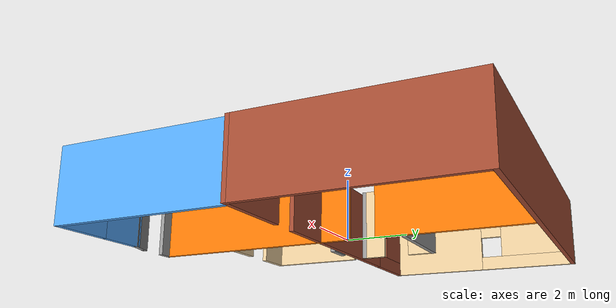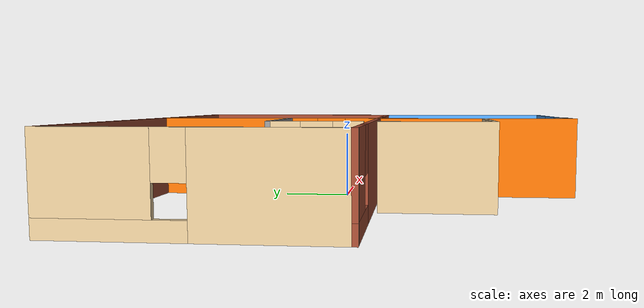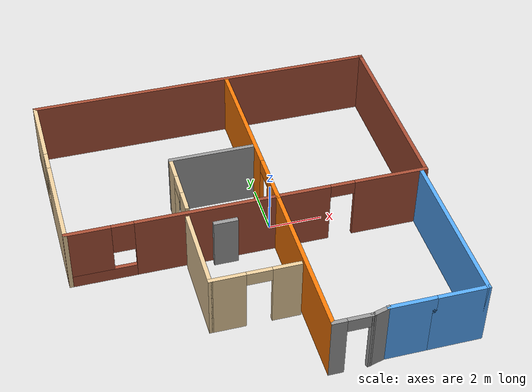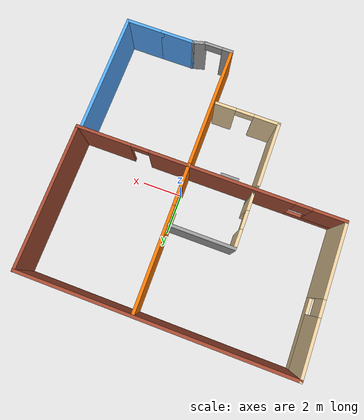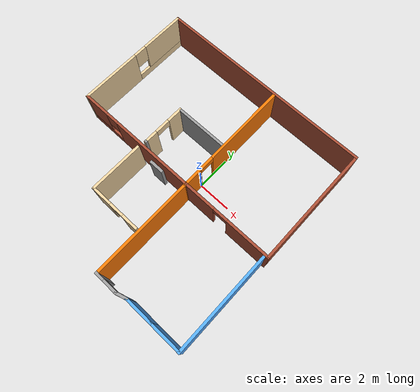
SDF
<?xml version='1.0'?>
<sdf version='1.6'>
  <model name='Home'>
    <pose frame=''>-1.01079 -0.552787 0 0 -0 0</pose>
    <link name='Door_3'>
      <collision name='Door_3_Collision'>
        <geometry>
          <box>
            <size>0.9 0.17 2</size>
          </box>
        </geometry>
        <pose frame=''>0 0 1 0 -0 0</pose>
      </collision>
      <visual name='Door_3_Visual'>
        <pose frame=''>0 0 1 0 -0 0</pose>
        <geometry>
          <box>
            <size>0.9 0.17 2</size>
          </box>
        </geometry>
        <material>
          <script>
            <uri>file://media/materials/scripts/gazebo.material</uri>
            <name>Gazebo/Grey</name>
          </script>
        </material>
      </visual>
      <pose frame=''>-0.975524 -0.723427 0 0 -0 0</pose>
    </link>
    <link name='Wall_15'>
      <collision name='Wall_15_Collision'>
        <geometry>
          <box>
            <size>13.25 0.15 2.5</size>
          </box>
        </geometry>
        <pose frame=''>0 0 1.25 0 -0 0</pose>
      </collision>
      <visual name='Wall_15_Visual'>
        <pose frame=''>0 0 1.25 0 -0 0</pose>
        <geometry>
          <box>
            <size>13.25 0.15 2.5</size>
          </box>
        </geometry>
        <material>
          <script>
            <uri>file://media/materials/scripts/gazebo.material</uri>
            <name>Gazebo/Bricks</name>
          </script>
          <ambient>1 0.764706 0.305882 1</ambient>
        </material>
        <meta>
          <layer>0</layer>
        </meta>
      </visual>
      <pose frame=''>0 6.63211 0 0 -0 0</pose>
    </link>
    <link name='Wall_16'>
      <collision name='Wall_16_Collision'>
        <geometry>
          <box>
            <size>7.25 0.15 2.5</size>
          </box>
        </geometry>
        <pose frame=''>0 0 1.25 0 -0 0</pose>
      </collision>
      <visual name='Wall_16_Visual'>
        <pose frame=''>0 0 1.25 0 -0 0</pose>
        <geometry>
          <box>
            <size>7.25 0.15 2.5</size>
          </box>
        </geometry>
        <material>
          <script>
            <uri>file://media/materials/scripts/gazebo.material</uri>
            <name>Gazebo/Bricks</name>
          </script>
          <ambient>1 0.764706 0.305882 1</ambient>
        </material>
        <meta>
          <layer>0</layer>
        </meta>
      </visual>
      <pose frame=''>6.55 3.08211 0 0 0 -1.5708</pose>
    </link>
    <link name='Wall_17'>
      <pose frame=''>0 -0.467893 0 0 -0 3.14159</pose>
      <visual name='Wall_17_Visual_0'>
        <pose frame=''>-5.23558 0 1.25 0 -0 0</pose>
        <geometry>
          <box>
            <size>2.77884 0.15 2.5</size>
          </box>
        </geometry>
        <material>
          <script>
            <uri>file://media/materials/scripts/gazebo.material</uri>
            <name>Gazebo/Bricks</name>
          </script>
          <ambient>0.921569 0.807843 0.615686 1</ambient>
        </material>
        <meta>
          <layer>0</layer>
        </meta>
      </visual>
      <collision name='Wall_17_Collision_0'>
        <geometry>
          <box>
            <size>2.77884 0.15 2.5</size>
          </box>
        </geometry>
        <pose frame=''>-5.23558 0 1.25 0 -0 0</pose>
      </collision>
      <visual name='Wall_17_Visual_1'>
        <pose frame=''>0.607303 0 1.25 0 -0 0</pose>
        <geometry>
          <box>
            <size>7.10693 0.15 2.5</size>
          </box>
        </geometry>
        <material>
          <script>
            <uri>file://media/materials/scripts/gazebo.material</uri>
            <name>Gazebo/Bricks</name>
          </script>
          <ambient>0.921569 0.807843 0.615686 1</ambient>
        </material>
        <meta>
          <layer>0</layer>
        </meta>
      </visual>
      <collision name='Wall_17_Collision_1'>
        <geometry>
          <box>
            <size>7.10693 0.15 2.5</size>
          </box>
        </geometry>
        <pose frame=''>0.607303 0 1.25 0 -0 0</pose>
      </collision>
      <visual name='Wall_17_Visual_2'>
        <pose frame=''>5.39288 0 0.25 0 -0 0</pose>
        <geometry>
          <box>
            <size>2.46423 0.15 0.5</size>
          </box>
        </geometry>
        <material>
          <script>
            <uri>file://media/materials/scripts/gazebo.material</uri>
            <name>Gazebo/Bricks</name>
          </script>
          <ambient>0.921569 0.807843 0.615686 1</ambient>
        </material>
        <meta>
          <layer>0</layer>
        </meta>
      </visual>
      <collision name='Wall_17_Collision_2'>
        <geometry>
          <box>
            <size>2.46423 0.15 0.5</size>
          </box>
        </geometry>
        <pose frame=''>5.39288 0 0.25 0 -0 0</pose>
      </collision>
      <visual name='Wall_17_Visual_3'>
        <pose frame=''>5.79288 0 1.5 0 -0 0</pose>
        <geometry>
          <box>
            <size>1.66423 0.15 2</size>
          </box>
        </geometry>
        <material>
          <script>
            <uri>file://media/materials/scripts/gazebo.material</uri>
            <name>Gazebo/Bricks</name>
          </script>
          <ambient>0.921569 0.807843 0.615686 1</ambient>
        </material>
        <meta>
          <layer>0</layer>
        </meta>
      </visual>
      <collision name='Wall_17_Collision_3'>
        <geometry>
          <box>
            <size>1.66423 0.15 2</size>
          </box>
        </geometry>
        <pose frame=''>5.79288 0 1.5 0 -0 0</pose>
      </collision>
      <visual name='Wall_17_Visual_4'>
        <pose frame=''>4.56077 0 1.9 0 -0 0</pose>
        <geometry>
          <box>
            <size>0.8 0.15 1.2</size>
          </box>
        </geometry>
        <material>
          <script>
            <uri>file://media/materials/scripts/gazebo.material</uri>
            <name>Gazebo/Bricks</name>
          </script>
          <ambient>0.921569 0.807843 0.615686 1</ambient>
        </material>
        <meta>
          <layer>0</layer>
        </meta>
      </visual>
      <collision name='Wall_17_Collision_4'>
        <geometry>
          <box>
            <size>0.8 0.15 1.2</size>
          </box>
        </geometry>
        <pose frame=''>4.56077 0 1.9 0 -0 0</pose>
      </collision>
      <visual name='Wall_17_Visual_5'>
        <pose frame=''>-3.39616 0 2.25 0 -0 0</pose>
        <geometry>
          <box>
            <size>0.9 0.15 0.5</size>
          </box>
        </geometry>
        <material>
          <script>
            <uri>file://media/materials/scripts/gazebo.material</uri>
            <name>Gazebo/Bricks</name>
          </script>
          <ambient>0.921569 0.807843 0.615686 1</ambient>
        </material>
        <meta>
          <layer>0</layer>
        </meta>
      </visual>
      <collision name='Wall_17_Collision_5'>
        <geometry>
          <box>
            <size>0.9 0.15 0.5</size>
          </box>
        </geometry>
        <pose frame=''>-3.39616 0 2.25 0 -0 0</pose>
      </collision>
    </link>
    <link name='Wall_18'>
      <pose frame=''>-6.55 3.08211 0 0 -0 1.5708</pose>
      <visual name='Wall_18_Visual_0'>
        <pose frame=''>-1.78725 0 1.25 0 -0 0</pose>
        <geometry>
          <box>
            <size>3.6755 0.15 2.5</size>
          </box>
        </geometry>
        <material>
          <script>
            <uri>file://media/materials/scripts/gazebo.material</uri>
            <name>Gazebo/Grey</name>
          </script>
          <ambient>0.921569 0.807843 0.615686 1</ambient>
        </material>
        <meta>
          <layer>0</layer>
        </meta>
      </visual>
      <collision name='Wall_18_Collision_0'>
        <geometry>
          <box>
            <size>3.6755 0.15 2.5</size>
          </box>
        </geometry>
        <pose frame=''>-1.78725 0 1.25 0 -0 0</pose>
      </collision>
      <visual name='Wall_18_Visual_1'>
        <pose frame=''>1.83775 0 0.25 0 -0 0</pose>
        <geometry>
          <box>
            <size>3.5745 0.15 0.5</size>
          </box>
        </geometry>
        <material>
          <script>
            <uri>file://media/materials/scripts/gazebo.material</uri>
            <name>Gazebo/Grey</name>
          </script>
          <ambient>0.921569 0.807843 0.615686 1</ambient>
        </material>
        <meta>
          <layer>0</layer>
        </meta>
      </visual>
      <collision name='Wall_18_Collision_1'>
        <geometry>
          <box>
            <size>3.5745 0.15 0.5</size>
          </box>
        </geometry>
        <pose frame=''>1.83775 0 0.25 0 -0 0</pose>
      </collision>
      <visual name='Wall_18_Visual_2'>
        <pose frame=''>2.23775 0 1.5 0 -0 0</pose>
        <geometry>
          <box>
            <size>2.7745 0.15 2</size>
          </box>
        </geometry>
        <material>
          <script>
            <uri>file://media/materials/scripts/gazebo.material</uri>
            <name>Gazebo/Grey</name>
          </script>
          <ambient>0.921569 0.807843 0.615686 1</ambient>
        </material>
        <meta>
          <layer>0</layer>
        </meta>
      </visual>
      <collision name='Wall_18_Collision_2'>
        <geometry>
          <box>
            <size>2.7745 0.15 2</size>
          </box>
        </geometry>
        <pose frame=''>2.23775 0 1.5 0 -0 0</pose>
      </collision>
      <visual name='Wall_18_Visual_3'>
        <pose frame=''>0.450499 0 1.9 0 -0 0</pose>
        <geometry>
          <box>
            <size>0.8 0.15 1.2</size>
          </box>
        </geometry>
        <material>
          <script>
            <uri>file://media/materials/scripts/gazebo.material</uri>
            <name>Gazebo/Grey</name>
          </script>
          <ambient>0.921569 0.807843 0.615686 1</ambient>
        </material>
        <meta>
          <layer>0</layer>
        </meta>
      </visual>
      <collision name='Wall_18_Collision_3'>
        <geometry>
          <box>
            <size>0.8 0.15 1.2</size>
          </box>
        </geometry>
        <pose frame=''>0.450499 0 1.9 0 -0 0</pose>
      </collision>
    </link>
    <link name='Wall_20'>
      <collision name='Wall_20_Collision'>
        <geometry>
          <box>
            <size>6.25 0.15 2.5</size>
          </box>
        </geometry>
        <pose frame=''>0 0 1.25 0 -0 0</pose>
      </collision>
      <visual name='Wall_20_Visual'>
        <pose frame=''>0 0 1.25 0 -0 0</pose>
        <geometry>
          <box>
            <size>6.25 0.15 2.5</size>
          </box>
        </geometry>
        <material>
          <script>
            <uri>file://media/materials/scripts/gazebo.material</uri>
            <name>Gazebo/Grey</name>
          </script>
          <ambient>0.996078 0.47451 0.0196078 1</ambient>
        </material>
        <meta>
          <layer>0</layer>
        </meta>
      </visual>
      <pose frame=''>0.990578 -3.56525 0 0 0 -1.5708</pose>
    </link>
    <link name='Wall_21'>
      <pose frame=''>1.66558 -6.61525 0 0 -0 0</pose>
      <visual name='Wall_21_Visual_0'>
        <pose frame=''>-0.474888 0 1.25 0 -0 0</pose>
        <geometry>
          <box>
            <size>0.550224 0.15 2.5</size>
          </box>
        </geometry>
        <material>
          <script>
            <uri>file://media/materials/scripts/gazebo.material</uri>
            <name>Gazebo/Grey</name>
          </script>
          <ambient>1 1 1 1</ambient>
        </material>
        <meta>
          <layer>0</layer>
        </meta>
      </visual>
      <collision name='Wall_21_Collision_0'>
        <geometry>
          <box>
            <size>0.550224 0.15 2.5</size>
          </box>
        </geometry>
        <pose frame=''>-0.474888 0 1.25 0 -0 0</pose>
      </collision>
      <visual name='Wall_21_Visual_1'>
        <pose frame=''>0.725112 0 1.25 0 -0 0</pose>
        <geometry>
          <box>
            <size>0.049776 0.15 2.5</size>
          </box>
        </geometry>
        <material>
          <script>
            <uri>file://media/materials/scripts/gazebo.material</uri>
            <name>Gazebo/Grey</name>
          </script>
          <ambient>1 1 1 1</ambient>
        </material>
        <meta>
          <layer>0</layer>
        </meta>
      </visual>
      <collision name='Wall_21_Collision_1'>
        <geometry>
          <box>
            <size>0.049776 0.15 2.5</size>
          </box>
        </geometry>
        <pose frame=''>0.725112 0 1.25 0 -0 0</pose>
      </collision>
      <visual name='Wall_21_Visual_2'>
        <pose frame=''>0.250224 0 2.25 0 -0 0</pose>
        <geometry>
          <box>
            <size>0.9 0.15 0.5</size>
          </box>
        </geometry>
        <material>
          <script>
            <uri>file://media/materials/scripts/gazebo.material</uri>
            <name>Gazebo/Grey</name>
          </script>
          <ambient>1 1 1 1</ambient>
        </material>
        <meta>
          <layer>0</layer>
        </meta>
      </visual>
      <collision name='Wall_21_Collision_2'>
        <geometry>
          <box>
            <size>0.9 0.15 0.5</size>
          </box>
        </geometry>
        <pose frame=''>0.250224 0 2.25 0 -0 0</pose>
      </collision>
    </link>
    <link name='Wall_22'>
      <collision name='Wall_22_Collision'>
        <geometry>
          <box>
            <size>0.75 0.15 2.5</size>
          </box>
        </geometry>
        <pose frame=''>0 0 1.25 0 -0 0</pose>
      </collision>
      <visual name='Wall_22_Visual'>
        <pose frame=''>0 0 1.25 0 -0 0</pose>
        <geometry>
          <box>
            <size>0.75 0.15 2.5</size>
          </box>
        </geometry>
        <material>
          <script>
            <uri>file://media/materials/scripts/gazebo.material</uri>
            <name>Gazebo/Grey</name>
          </script>
          <ambient>1 1 1 1</ambient>
        </material>
        <meta>
          <layer>0</layer>
        </meta>
      </visual>
      <pose frame=''>2.63036 -6.53761 0 0 -0 0.261799</pose>
    </link>
    <link name='Wall_23'>
      <collision name='Wall_23_Collision'>
        <geometry>
          <box>
            <size>1.75 0.15 2.5</size>
          </box>
        </geometry>
        <pose frame=''>0 0 1.25 0 -0 0</pose>
      </collision>
      <visual name='Wall_23_Visual'>
        <pose frame=''>0 0 1.25 0 -0 0</pose>
        <geometry>
          <box>
            <size>1.75 0.15 2.5</size>
          </box>
        </geometry>
        <material>
          <script>
            <uri>file://media/materials/scripts/gazebo.material</uri>
            <name>Gazebo/Grey</name>
          </script>
          <ambient>0.333333 0.666667 1 1</ambient>
        </material>
        <meta>
          <layer>0</layer>
        </meta>
      </visual>
      <pose frame=''>3.72013 -6.45996 0 0 -0 0</pose>
    </link>
    <link name='Wall_25'>
      <collision name='Wall_25_Collision'>
        <geometry>
          <box>
            <size>2 0.15 2.5</size>
          </box>
        </geometry>
        <pose frame=''>0 0 1.25 0 -0 0</pose>
      </collision>
      <visual name='Wall_25_Visual'>
        <pose frame=''>0 0 1.25 0 -0 0</pose>
        <geometry>
          <box>
            <size>2 0.15 2.5</size>
          </box>
        </geometry>
        <material>
          <script>
            <uri>file://media/materials/scripts/gazebo.material</uri>
            <name>Gazebo/Grey</name>
          </script>
          <ambient>0.333333 0.666667 1 1</ambient>
        </material>
        <meta>
          <layer>0</layer>
        </meta>
      </visual>
      <pose frame=''>5.44513 -6.45996 0 0 -0 0</pose>
    </link>
    <link name='Wall_26'>
      <collision name='Wall_26_Collision'>
        <geometry>
          <box>
            <size>6 0.15 2.5</size>
          </box>
        </geometry>
        <pose frame=''>0 0 1.25 0 -0 0</pose>
      </collision>
      <visual name='Wall_26_Visual'>
        <pose frame=''>0 0 1.25 0 -0 0</pose>
        <geometry>
          <box>
            <size>6 0.15 2.5</size>
          </box>
        </geometry>
        <material>
          <script>
            <uri>file://media/materials/scripts/gazebo.material</uri>
            <name>Gazebo/Grey</name>
          </script>
          <ambient>0.333333 0.666667 1 1</ambient>
        </material>
        <meta>
          <layer>0</layer>
        </meta>
      </visual>
      <pose frame=''>6.37013 -3.53496 0 0 -0 1.5708</pose>
    </link>
    <link name='Wall_28'>
      <collision name='Wall_28_Collision'>
        <geometry>
          <box>
            <size>3.25 0.15 2.5</size>
          </box>
        </geometry>
        <pose frame=''>0 0 1.25 0 -0 0</pose>
      </collision>
      <visual name='Wall_28_Visual'>
        <pose frame=''>0 0 1.25 0 -0 0</pose>
        <geometry>
          <box>
            <size>3.25 0.15 2.5</size>
          </box>
        </geometry>
        <material>
          <script>
            <uri>file://media/materials/scripts/gazebo.material</uri>
            <name>Gazebo/Grey</name>
          </script>
          <ambient>0.921569 0.807843 0.615686 1</ambient>
        </material>
        <meta>
          <layer>0</layer>
        </meta>
      </visual>
      <pose frame=''>-2.3171 -2.27343 0 0 0 -1.5708</pose>
    </link>
    <link name='Wall_29'>
      <pose frame=''>-0.767099 -3.82343 0 0 -0 0</pose>
      <visual name='Wall_29_Visual_0'>
        <pose frame=''>-0.968233 0 1.25 0 -0 0</pose>
        <geometry>
          <box>
            <size>1.31353 0.15 2.5</size>
          </box>
        </geometry>
        <material>
          <script>
            <uri>file://media/materials/scripts/gazebo.material</uri>
            <name>Gazebo/Grey</name>
          </script>
          <ambient>0.921569 0.807843 0.615686 1</ambient>
        </material>
        <meta>
          <layer>0</layer>
        </meta>
      </visual>
      <collision name='Wall_29_Collision_0'>
        <geometry>
          <box>
            <size>1.31353 0.15 2.5</size>
          </box>
        </geometry>
        <pose frame=''>-0.968233 0 1.25 0 -0 0</pose>
      </collision>
      <visual name='Wall_29_Visual_1'>
        <pose frame=''>1.10677 0 1.25 0 -0 0</pose>
        <geometry>
          <box>
            <size>1.03647 0.15 2.5</size>
          </box>
        </geometry>
        <material>
          <script>
            <uri>file://media/materials/scripts/gazebo.material</uri>
            <name>Gazebo/Grey</name>
          </script>
          <ambient>0.921569 0.807843 0.615686 1</ambient>
        </material>
        <meta>
          <layer>0</layer>
        </meta>
      </visual>
      <collision name='Wall_29_Collision_1'>
        <geometry>
          <box>
            <size>1.03647 0.15 2.5</size>
          </box>
        </geometry>
        <pose frame=''>1.10677 0 1.25 0 -0 0</pose>
      </collision>
      <visual name='Wall_29_Visual_2'>
        <pose frame=''>0.138534 0 2.25 0 -0 0</pose>
        <geometry>
          <box>
            <size>0.9 0.15 0.5</size>
          </box>
        </geometry>
        <material>
          <script>
            <uri>file://media/materials/scripts/gazebo.material</uri>
            <name>Gazebo/Grey</name>
          </script>
          <ambient>0.921569 0.807843 0.615686 1</ambient>
        </material>
        <meta>
          <layer>0</layer>
        </meta>
      </visual>
      <collision name='Wall_29_Collision_2'>
        <geometry>
          <box>
            <size>0.9 0.15 0.5</size>
          </box>
        </geometry>
        <pose frame=''>0.138534 0 2.25 0 -0 0</pose>
      </collision>
    </link>
    <link name='Wall_31'>
      <pose frame=''>0.979013 2.98904 0 0 0 -1.5675</pose>
      <visual name='Wall_31_Visual_0'>
        <pose frame=''>-1.04875 0 1.25 0 -0 0</pose>
        <geometry>
          <box>
            <size>5.06112 0.15 2.5</size>
          </box>
        </geometry>
        <material>
          <script>
            <uri>file://media/materials/scripts/gazebo.material</uri>
            <name>Gazebo/Grey</name>
          </script>
          <ambient>0.996078 0.47451 0.0196078 1</ambient>
        </material>
        <meta>
          <layer>0</layer>
        </meta>
      </visual>
      <collision name='Wall_31_Collision_0'>
        <geometry>
          <box>
            <size>5.06112 0.15 2.5</size>
          </box>
        </geometry>
        <pose frame=''>-1.04875 0 1.25 0 -0 0</pose>
      </collision>
      <visual name='Wall_31_Visual_1'>
        <pose frame=''>2.98056 0 1.25 0 -0 0</pose>
        <geometry>
          <box>
            <size>1.19749 0.15 2.5</size>
          </box>
        </geometry>
        <material>
          <script>
            <uri>file://media/materials/scripts/gazebo.material</uri>
            <name>Gazebo/Grey</name>
          </script>
          <ambient>0.996078 0.47451 0.0196078 1</ambient>
        </material>
        <meta>
          <layer>0</layer>
        </meta>
      </visual>
      <collision name='Wall_31_Collision_1'>
        <geometry>
          <box>
            <size>1.19749 0.15 2.5</size>
          </box>
        </geometry>
        <pose frame=''>2.98056 0 1.25 0 -0 0</pose>
      </collision>
      <visual name='Wall_31_Visual_2'>
        <pose frame=''>1.93182 0 2.25 0 -0 0</pose>
        <geometry>
          <box>
            <size>0.9 0.15 0.5</size>
          </box>
        </geometry>
        <material>
          <script>
            <uri>file://media/materials/scripts/gazebo.material</uri>
            <name>Gazebo/Grey</name>
          </script>
          <ambient>0.996078 0.47451 0.0196078 1</ambient>
        </material>
        <meta>
          <layer>0</layer>
        </meta>
      </visual>
      <collision name='Wall_31_Collision_2'>
        <geometry>
          <box>
            <size>0.9 0.15 0.5</size>
          </box>
        </geometry>
        <pose frame=''>1.93182 0 2.25 0 -0 0</pose>
      </collision>
    </link>
    <link name='Wall_33'>
      <collision name='Wall_33_Collision'>
        <geometry>
          <box>
            <size>3.25 0.15 2.5</size>
          </box>
        </geometry>
        <pose frame=''>0 0 1.25 0 -0 0</pose>
      </collision>
      <visual name='Wall_33_Visual'>
        <pose frame=''>0 0 1.25 0 -0 0</pose>
        <geometry>
          <box>
            <size>3.25 0.15 2.5</size>
          </box>
        </geometry>
        <material>
          <script>
            <uri>file://media/materials/scripts/gazebo.material</uri>
            <name>Gazebo/Grey</name>
          </script>
          <ambient>1 1 1 1</ambient>
        </material>
        <meta>
          <layer>0</layer>
        </meta>
      </visual>
      <pose frame=''>-0.675075 2.3992 0 0 -0 3.14159</pose>
    </link>
    <link name='Wall_34'>
      <pose frame=''>-2.22507 1.0992 0 0 0 -1.5708</pose>
      <visual name='Wall_34_Visual_0'>
        <pose frame=''>-0.880147 0 1.25 0 -0 0</pose>
        <geometry>
          <box>
            <size>0.989706 0.15 2.5</size>
          </box>
        </geometry>
        <material>
          <script>
            <uri>file://media/materials/scripts/gazebo.material</uri>
            <name>Gazebo/Grey</name>
          </script>
          <ambient>0.921569 0.807843 0.615686 1</ambient>
        </material>
        <meta>
          <layer>0</layer>
        </meta>
      </visual>
      <collision name='Wall_34_Collision_0'>
        <geometry>
          <box>
            <size>0.989706 0.15 2.5</size>
          </box>
        </geometry>
        <pose frame=''>-0.880147 0 1.25 0 -0 0</pose>
      </collision>
      <visual name='Wall_34_Visual_1'>
        <pose frame=''>0.944853 0 1.25 0 -0 0</pose>
        <geometry>
          <box>
            <size>0.860294 0.15 2.5</size>
          </box>
        </geometry>
        <material>
          <script>
            <uri>file://media/materials/scripts/gazebo.material</uri>
            <name>Gazebo/Grey</name>
          </script>
          <ambient>0.921569 0.807843 0.615686 1</ambient>
        </material>
        <meta>
          <layer>0</layer>
        </meta>
      </visual>
      <collision name='Wall_34_Collision_1'>
        <geometry>
          <box>
            <size>0.860294 0.15 2.5</size>
          </box>
        </geometry>
        <pose frame=''>0.944853 0 1.25 0 -0 0</pose>
      </collision>
      <visual name='Wall_34_Visual_2'>
        <pose frame=''>0.064706 0 2.25 0 -0 0</pose>
        <geometry>
          <box>
            <size>0.9 0.15 0.5</size>
          </box>
        </geometry>
        <material>
          <script>
            <uri>file://media/materials/scripts/gazebo.material</uri>
            <name>Gazebo/Grey</name>
          </script>
          <ambient>0.921569 0.807843 0.615686 1</ambient>
        </material>
        <meta>
          <layer>0</layer>
        </meta>
      </visual>
      <collision name='Wall_34_Collision_2'>
        <geometry>
          <box>
            <size>0.9 0.15 0.5</size>
          </box>
        </geometry>
        <pose frame=''>0.064706 0 2.25 0 -0 0</pose>
      </collision>
    </link>
    <link name='Wall_35'>
      <collision name='Wall_35_Collision'>
        <geometry>
          <box>
            <size>0.15 0.15 2.5</size>
          </box>
        </geometry>
        <pose frame=''>0 0 1.25 0 -0 0</pose>
      </collision>
      <visual name='Wall_35_Visual'>
        <pose frame=''>0 0 1.25 0 -0 0</pose>
        <geometry>
          <box>
            <size>0.15 0.15 2.5</size>
          </box>
        </geometry>
        <material>
          <script>
            <uri>file://media/materials/scripts/gazebo.material</uri>
            <name>Gazebo/Grey</name>
          </script>
          <ambient>1 1 1 1</ambient>
        </material>
        <meta>
          <layer>0</layer>
        </meta>
      </visual>
      <pose frame=''>-2.22507 -0.200795 0 0 -0 0</pose>
    </link>
    <link name='Wall_36'>
      <collision name='Wall_36_Collision'>
        <geometry>
          <box>
            <size>0.15 0.15 2.5</size>
          </box>
        </geometry>
        <pose frame=''>0 0 1.25 0 -0 0</pose>
      </collision>
      <visual name='Wall_36_Visual'>
        <pose frame=''>0 0 1.25 0 -0 0</pose>
        <geometry>
          <box>
            <size>0.15 0.15 2.5</size>
          </box>
        </geometry>
        <material>
          <script>
            <uri>file://media/materials/scripts/gazebo.material</uri>
            <name>Gazebo/Grey</name>
          </script>
          <ambient>1 1 1 1</ambient>
        </material>
        <meta>
          <layer>0</layer>
        </meta>
      </visual>
      <pose frame=''>-2.22507 -0.200795 0 0 -0 0</pose>
    </link>
    <static>1</static>
  </model>
</sdf>
